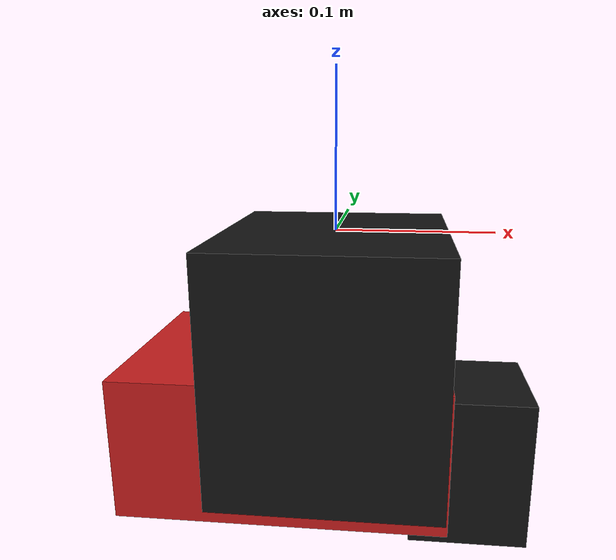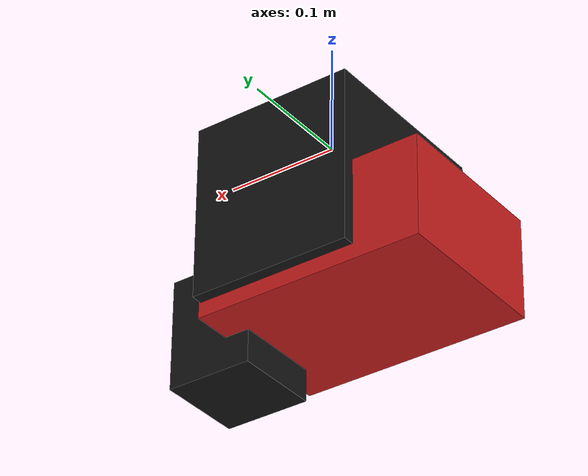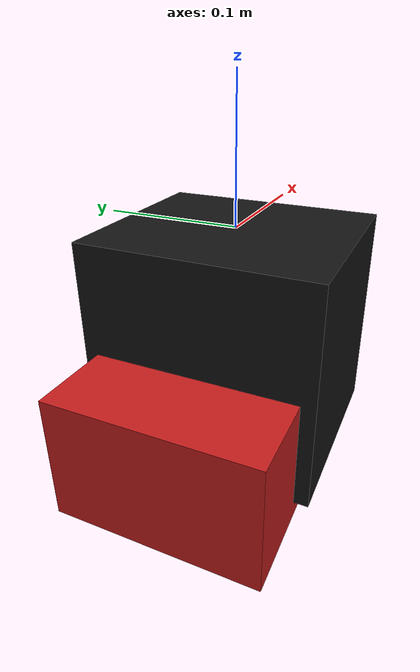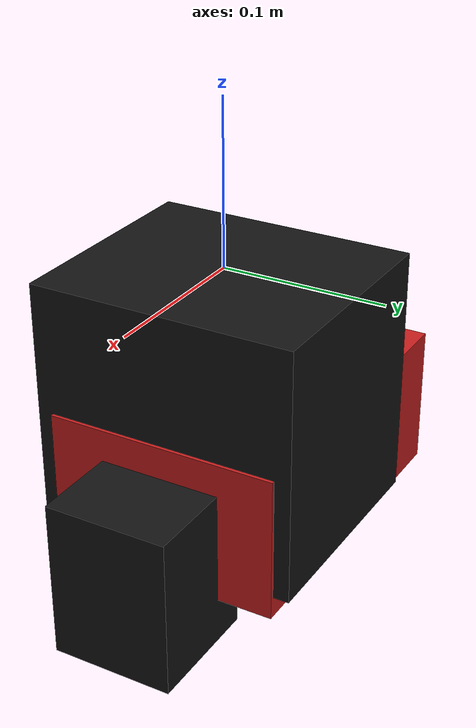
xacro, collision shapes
<?xml version="1.0"?>

<robot name="LIBRA-I_2DJNT" xmlns:xacro="http://www.ros.org/wiki/xacro">

    <!-- Includes -->
    <xacro:include filename="$(find libra)/models/common/common.urdf.xacro"/>
    <xacro:include filename="$(find libra)/models/assemblies/2djnt.urdf.xacro"/>

    <!-- Model Construction -->
    <link name="base_link"/>
    <xacro:spawn_2djnt parent="base_link"/>

</robot>

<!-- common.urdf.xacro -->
<robot xmlns:xacro="http://www.ros.org/wiki/xacro">

    <!-- Prevent duplicate inclusion -->
    <xacro:unless value="$(optenv COMMON_URDF_INCLUDED false)">
        <xacro:property name="COMMON_URDF_INCLUDED" value="true"/>

        <!-- ********************[ PROPERTIES ]******************** -->

        <xacro:property name="PI" value="3.14159265359"/>

        <!-- ********************[ MATERIALS ]******************** -->

        <!-- Colors: Monochrome -->
        <material name="black">
            <color rgba="${20/255} ${20/255} ${20/255} 1"/>
        </material>
        <material name="gray">
            <color rgba="${90/255} ${90/255} ${90/255} 1"/>
        </material>
        <material name="silver">
            <color rgba="${170/255} ${170/255} ${170/255} 1"/>
        </material>
        <material name="white">
            <color rgba="${250/255} ${250/255} ${250/255} 1"/>
        </material>

        <!-- Colors: Primary & Secondary -->
        <material name="red">
            <color rgba="${200/255} ${30/255} ${30/255} 1"/>
        </material>
        <material name="yellow">
            <color rgba="${225/255} ${200/255} ${40/255} 1"/>
        </material>
        <material name="blue">
            <color rgba="${40/255} ${110/255} ${200/255} 1"/>
        </material>

        <material name="orange">
            <color rgba="${220/255} ${110/255} ${40/255} 1"/>
        </material>
        <material name="green">
            <color rgba="${50/255} ${170/255} ${90/255} 1"/>
        </material>
        <material name="purple">
            <color rgba="${150/255} ${50/255} ${200/255} 1"/>
        </material>

        <!-- ********************[ MACROS ]******************** -->

        <xacro:macro name="box_inertia" params="m x y z">
            <inertial>
                <mass value="${m}"/>
                <inertia ixx="${(m/12) * (y*y + z*z)}" ixy="0.0" ixz="0.0"
                        iyy="${(m/12) * (x*x + z*z)}" iyz="0.0"
                        izz="${(m/12) * (x*x + y*y)}"/>
            </inertial>
        </xacro:macro>

        <xacro:macro name="cylinder_inertia" params="m r h">
            <inertial>
                <mass value="${m}"/>
                <inertia ixx="${(m/12) * (3*r*r + h*h)}" ixy = "0" ixz = "0"
                        iyy="${(m/12) * (3*r*r + h*h)}" iyz = "0"
                        izz="${(m/2) * (r*r)}"/>
            </inertial>
        </xacro:macro>

        <xacro:macro name="sphere_inertia" params="m r">
            <inertial>
                <mass value="${m}"/>
                <inertia ixx="${(2/5) * m * (r*r)}" ixy="0.0" ixz="0.0"
                        iyy="${(2/5) * m * (r*r)}" iyz="0.0"
                        izz="${(2/5) * m * (r*r)}"/>
            </inertial>
        </xacro:macro>

    </xacro:unless>
</robot>

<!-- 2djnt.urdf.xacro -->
<robot xmlns:xacro="http://www.ros.org/wiki/xacro">

    <!-- Definition -->
    <xacro:macro name="spawn_2djnt" params="parent">

        <!-- ********************[ PROPERTIES ]******************** -->

        <!-- Stator (static part) -->
        <xacro:property name="d_2djnt_s_L" value="0.143"/>
        <xacro:property name="d_2djnt_s_W" value="0.165"/>
        <xacro:property name="d_2djnt_s_H" value="0.1565"/>
        <xacro:property name="m_2djnt_s" value="2.056"/>

        <!-- Rotor (moved part) -->
        <xacro:property name="d_2djnt_r_L" value="0.204"/>
        <xacro:property name="d_2djnt_r_W" value="0.145"/>
        <xacro:property name="d_2djnt_r_H" value="0.090"/>
        <xacro:property name="m_2djnt_r" value="1.317"/>

        <!-- Arm Connector -->
        <xacro:property name="d_conn_arm_L" value="0.076"/>
        <xacro:property name="d_conn_arm_W" value="0.076"/>
        <xacro:property name="d_conn_arm_H" value="0.0985"/>
        <xacro:property name="m_conn_arm" value="0.326"/>

        <!-- ********************[ LINKS ]******************** -->
        <!-- NOTE
            X = forward/red, Y = left/green, Z = upwards/blue
        -->

        <!-- Stator (static part) -->
        <link name="2d_stator_link">
            <visual>
                <origin xyz="-0.029 0 -0.042" rpy="${PI/2} 0 ${PI/2}"/>
                <geometry><mesh filename="package://libra/meshes/2d-stator.stl" scale="0.001 0.001 0.001"/></geometry>
                <material name="black"/>
            </visual>
            <collision>
                <origin xyz="0 0 0" rpy="0 0 0"/>
                <geometry><box size="${d_2djnt_s_L} ${d_2djnt_s_W} ${d_2djnt_s_H}"/></geometry>
            </collision>
            <xacro:box_inertia m="${m_2djnt_s}" x="${d_2djnt_s_L}" y="${d_2djnt_s_W}" z="${d_2djnt_s_H}"/>
        </link>
        <joint name="${parent}_to_2d_stator" type="fixed">
            <parent link="${parent}"/>
            <child link="2d_stator_link"/>
            <origin xyz="0 0 -${d_2djnt_s_H/2}" rpy="0 0 0"/>
        </joint>

        ---

        <!-- Rotor (moved part) -->
        <link name="2d_rotor_pitch_link"/>
        <joint name="Pitch" type="revolute">
            <parent link="2d_stator_link"/>
            <child link="2d_rotor_pitch_link"/>
            <origin xyz="${-d_2djnt_s_L/2 - 0.059 + d_2djnt_r_L/2} 0 ${d_2djnt_s_H/2 - 0.080 - d_2djnt_r_H/2}" rpy="0 0 0"/>
            <axis xyz="0 1 0"/>
            <limit lower="${-10 * PI / 180.0}" upper="${90 * PI / 180.0}" effort="100" velocity="1.0"/>
        </joint>

        <link name="2d_rotor_roll_link">
            <visual>
                <origin xyz="0 0 0.0050" rpy="-${PI/2} ${PI} -${PI/2}"/>
                <geometry><mesh filename="package://libra/meshes/2d-rotor.stl" scale="0.001 0.001 0.001"/></geometry>
                <material name="red"/>
            </visual>
            <collision>
                <origin xyz="0 0 0" rpy="0 0 0"/>
                <geometry><box size="${d_2djnt_r_L} ${d_2djnt_r_W} ${d_2djnt_r_H}"/></geometry>
            </collision>
            <xacro:box_inertia m="${m_2djnt_r}" x="${d_2djnt_r_L}" y="${d_2djnt_r_W}" z="${d_2djnt_r_H}"/>
        </link>
        <joint name="Roll" type="revolute">
            <parent link="2d_rotor_pitch_link"/>
            <child link="2d_rotor_roll_link"/>
            <origin xyz="0 0 0" rpy="0 0 0"/>
            <axis xyz="1 0 0"/>
            <limit lower="${-10 * PI / 180.0}" upper="${10 * PI / 180.0}" effort="100" velocity="1.0"/>
        </joint>

        ---

        <!-- Arm Connector -->
        <link name="arm_conn_link">
            <visual>
                <origin xyz="0.0030 0 0.0267" rpy="${PI} 0 0"/>
                <geometry><mesh filename="package://libra/meshes/2d-arm_connector.stl" scale="0.001 0.001 0.001"/></geometry>
                <material name="black"/>
            </visual>
            <collision>
                <origin xyz="0 0 0" rpy="0 0 0"/>
                <geometry><box size="${d_conn_arm_L} ${d_conn_arm_W} ${d_conn_arm_H}"/></geometry>
            </collision>
            <xacro:box_inertia m="${m_conn_arm}" x="${d_conn_arm_L}" y="${d_conn_arm_W}" z="${d_conn_arm_H}"/>
        </link>
        <joint name="2d_roll_to_2d_out_arm" type="fixed">
            <parent link="2d_rotor_roll_link"/>
            <child link="arm_conn_link"/>
            <origin xyz="${(d_2djnt_r_L/2 - 0.022) + d_conn_arm_L/2} 0 ${d_2djnt_r_H/2 - 0.020 - d_conn_arm_H/2}" rpy="0 0 0"/>
        </joint>

        ---

        <!-- Outbound Link -->
        <link name="2djnt_out_arm_link"/>
        <joint name="arm_conn_to_2d_out_arm" type="fixed">
            <parent link="arm_conn_link"/>
            <child link="2djnt_out_arm_link"/>
            <origin xyz="${d_conn_arm_L/2} 0 -${d_conn_arm_H/2 - 0.038}" rpy="0 0 0"/>
        </joint>

        <!-- ********************[ GAZEBO CONFIG ]******************** -->

        <gazebo reference="2d_stator_link"><material>Gazebo/Black</material></gazebo>
        <gazebo reference="2d_rotor_roll_link"><material>Gazebo/Red</material></gazebo>
        <gazebo reference="arm_conn_link"><material>Gazebo/Black</material></gazebo>

    </xacro:macro>
</robot>
